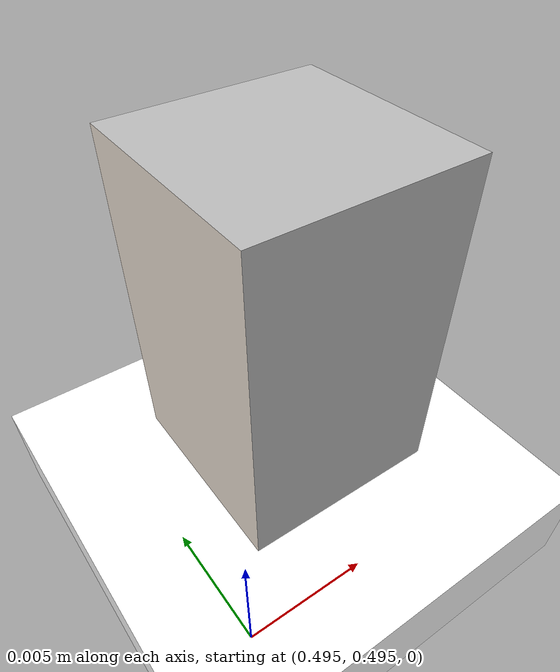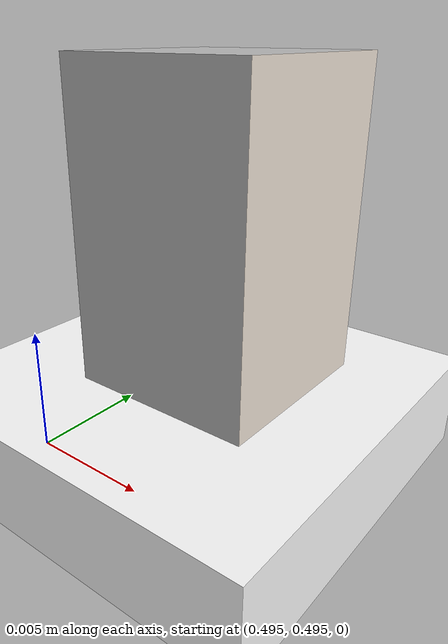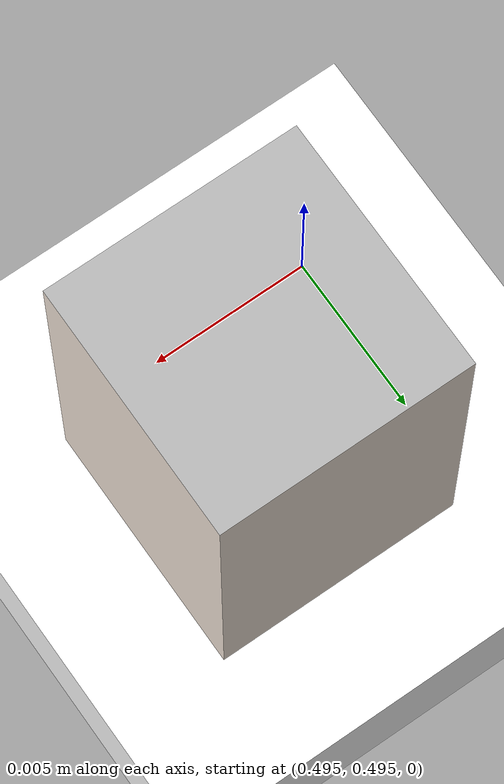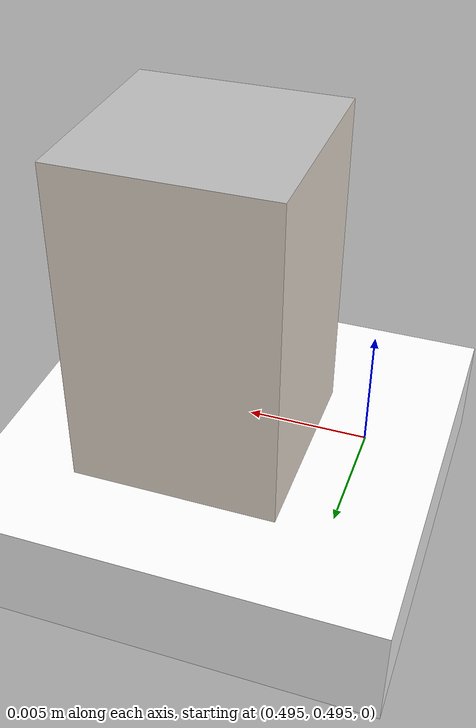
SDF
<?xml version="1.0"?>
<sdf version="1.6">
  <world name="chessboard_world">
    <physics name="1ms" type="ignored">
      <max_step_size>0.001</max_step_size>
      <real_time_factor>1.0</real_time_factor>
    </physics>
    <plugin
      filename="libgz-sim-physics-system.so"
      name="gz::sim::systems::Physics">
    </plugin>
    <plugin
      filename="libgz-sim-user-commands-system.so"
      name="gz::sim::systems::UserCommands">
    </plugin>
    <plugin
      filename="libgz-sim-scene-broadcaster-system.so"
      name="gz::sim::systems::SceneBroadcaster">
    </plugin>

    <light name="sun" type="directional">
      <cast_shadows>true</cast_shadows>
      <pose>0 0 10 0 0 0</pose>
      <diffuse>0.8 0.8 0.8 1</diffuse>
      <specular>0.2 0.2 0.2 1</specular>
      <attenuation>
        <range>1000</range>
        <constant>0.9</constant>
        <linear>0.01</linear>
        <quadratic>0.001</quadratic>
      </attenuation>
      <direction>-0.5 0.1 -0.9</direction>
    </light>

    <model name="ground_plane">
      <static>true</static>
      <link name="link">
        <collision name="collision">
          <geometry>
            <plane>
              <normal>0 0 1</normal>
              <size>100 100</size>
            </plane>
          </geometry>
        </collision>
        <visual name="visual">
          <geometry>
            <plane>
              <normal>0 0 1</normal>
              <size>100 100</size>
            </plane>
          </geometry>
          <material>
            <ambient>0.8 0.8 0.8 1</ambient>
            <diffuse>0.8 0.8 0.8 1</diffuse>
            <specular>0.8 0.8 0.8 1</specular>
          </material>
        </visual>
      </link>
    </model>

    <!-- chessboard -->
    <include>
      <uri>model://chessboard</uri>
      <pose>2 2 0.001 0 0 0</pose>
    </include>

    <!-- white pieces -->
    <include>
      <uri>model://kingW</uri>
      <pose>0.5 0.5 0.005 0 0 0</pose>
    </include>

  </world>
</sdf>

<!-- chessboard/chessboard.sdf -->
<sdf version="1.7">
  <model name="chessboard">
    <static>true</static>
    <link name="link">
      <collision name="collision">
        <geometry>
          <plane>
            <normal>0 0 1</normal>
            <size>4.0 4.0</size>
          </plane>
        </geometry>
      </collision>

      <visual name="visual">
        <geometry>
          <plane>
            <normal>0 0 1</normal>
            <size>4.0 4.0</size>
          </plane>
        </geometry>
        <material>
          <pbr>
            <metal>
              <albedo_map>model://chessboard/materials/textures/chessboard.png</albedo_map>
            </metal>
          </pbr>
          <diffuse>1.0 1.0 1.0 1.0</diffuse>
          <specular>0.5 0.5 0.5 1.0</specular>
        </material>
      </visual>
    </link>
  </model>
</sdf>

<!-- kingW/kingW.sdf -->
<sdf version="1.7">
  <model name="kingW">
    <static>0</static>
    <link name="link">

      <inertial>
        <mass>6.25</mass>
        <inertia>
          <ixx>0.046875</ixx>
          <ixy>0.0</ixy>
          <ixz>0.0</ixz>
          <iyy>0.046875</iyy>
          <iyz>0.0</iyz>
          <izz>0.03375</izz>
        </inertia>
      </inertial>

      <collision name="collision">
        <pose>0 0 0.3 0 0 0</pose>
          <geometry>
            <box>
              <size>0.15 0.15 0.6</size>
            </box>
          </geometry>
          <surface>
            <friction>
              <ode>
                <mu>30.0</mu>
                <mu2>30.0</mu2>
                <fdir1>0 0 0</fdir1>
              </ode>
            </friction>
            <contact>
              <ode>
                <kp>1000.0</kp>
                <kd>100.0</kd>
                <min_depth>0.001</min_depth>
                <max_vel>0.001</max_vel>
              </ode>
            </contact>
          </surface>
      </collision>

      <visual name="visual1">
        <pose>0 0 0 0 0 0</pose>
        <geometry>
          <mesh>
             <uri>model://kingW/meshes/kingW.dae</uri>
    		<!-- mesh scaled up 5x to reach 0.15m diameter from ~0.03m -->
	    <scale> 0.25 0.25 0.25 </scale>
          </mesh>
        </geometry>
      </visual>

      <velocity_decay>
        <linear>0.000000</linear>
        <angular>0.000000</angular>
      </velocity_decay>
      <self_collide>0</self_collide>
      <kinematic>0</kinematic>
      <gravity>1</gravity>
    </link>
  </model>
</sdf>
